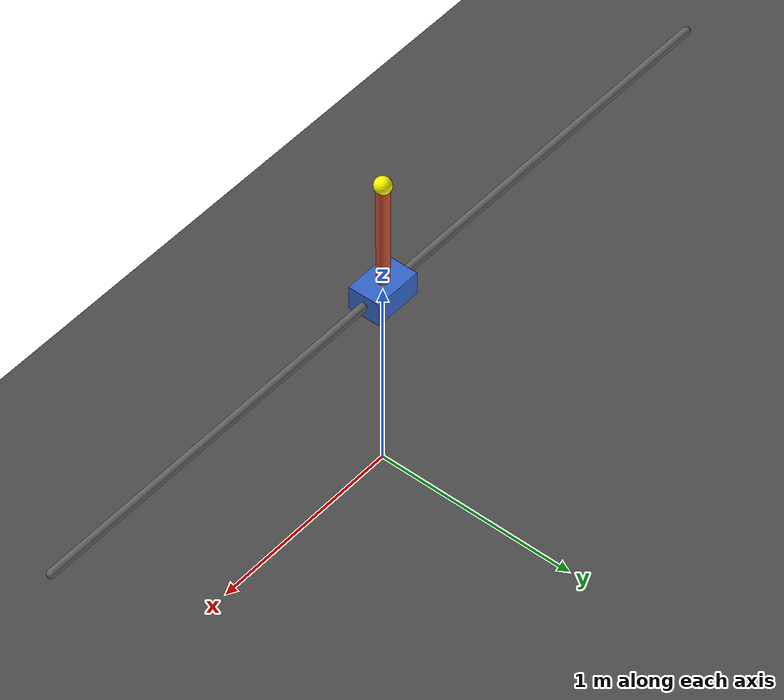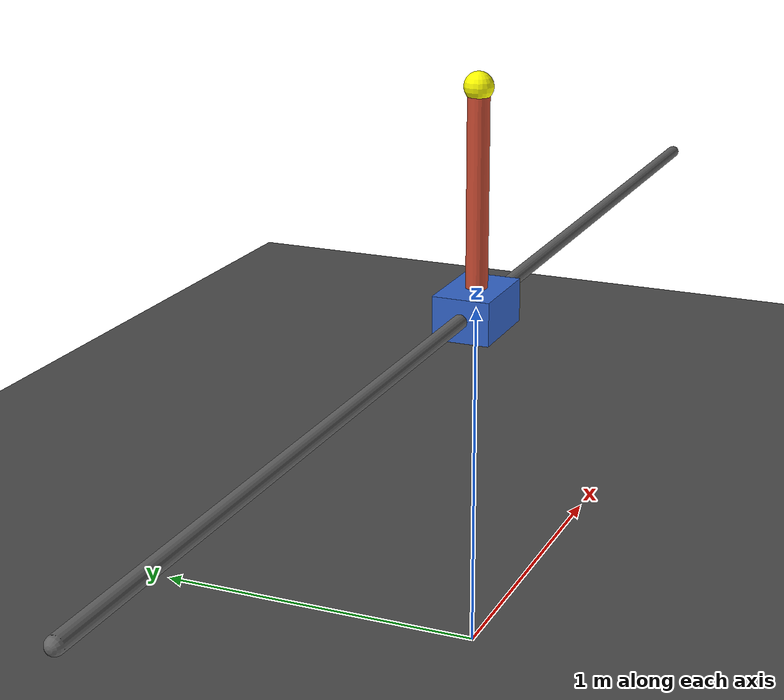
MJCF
<mujoco model="cartpole">
  <option timestep="0.01" integrator="RK4"/>

  <default>
    <joint damping="0.05"/>
    <geom rgba="0.7 0.7 0.7 1"/>
  </default>

  <worldbody>
    <light pos="0 0 3" dir="0 0 -1"/>
    <geom name="floor" type="plane" size="4 4 0.1" rgba="0.3 0.3 0.3 1"/>
    <geom name="rail" type="capsule" fromto="-2 0 1 2 0 1" size="0.02" rgba="0.4 0.4 0.4 1"
          contype="0" conaffinity="0"/>

    <body name="cart" pos="0 0 1.">
      <joint name="slider" type="slide" axis="1 0 0" limited="true" range="-1.8 1.8"/>
      <geom name="cart" type="box" size="0.12 0.08 0.06" mass="1.0" rgba="0.2 0.4 0.8 1"/>
      <body name="pole" pos="0 0 0">
        <joint name="hinge" type="hinge" axis="0 1 0"/>
        <geom name="pole" type="capsule" fromto="0 0 0 0 0 0.6" size="0.03" mass="0.1" rgba="0.8 0.3 0.2 1"/>
        <site name="tip" pos="0 0 0.6" size="0.04" rgba="1 1 0 1"/>   <!-- massless marker at the pole's free end -->
      </body>
    </body>
  </worldbody>

  <actuator>
    <motor name="slide" joint="slider" gear="1" ctrlrange="-20 20"/>
  </actuator>
</mujoco>
